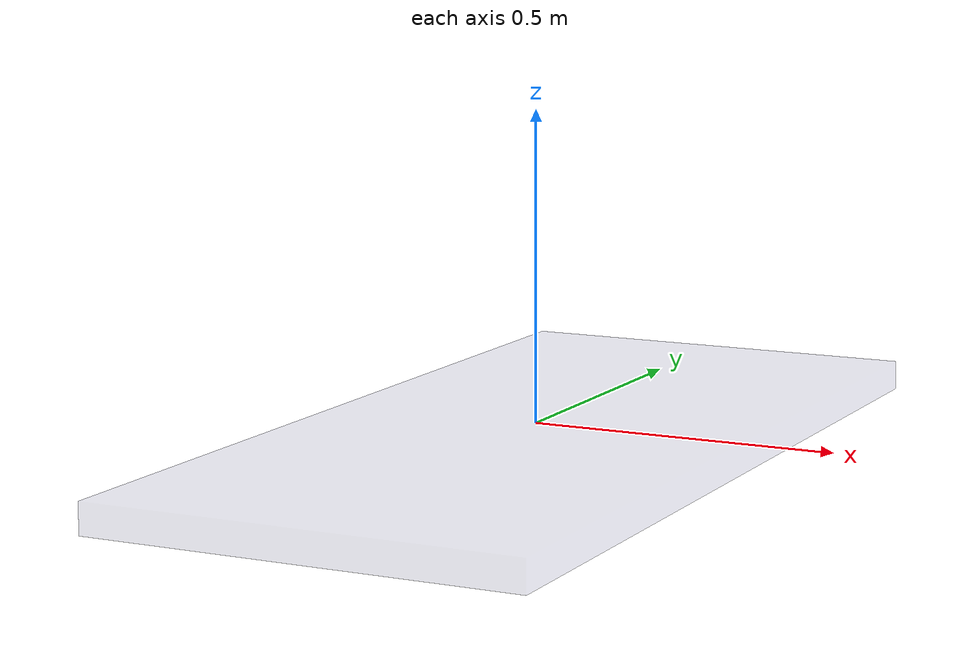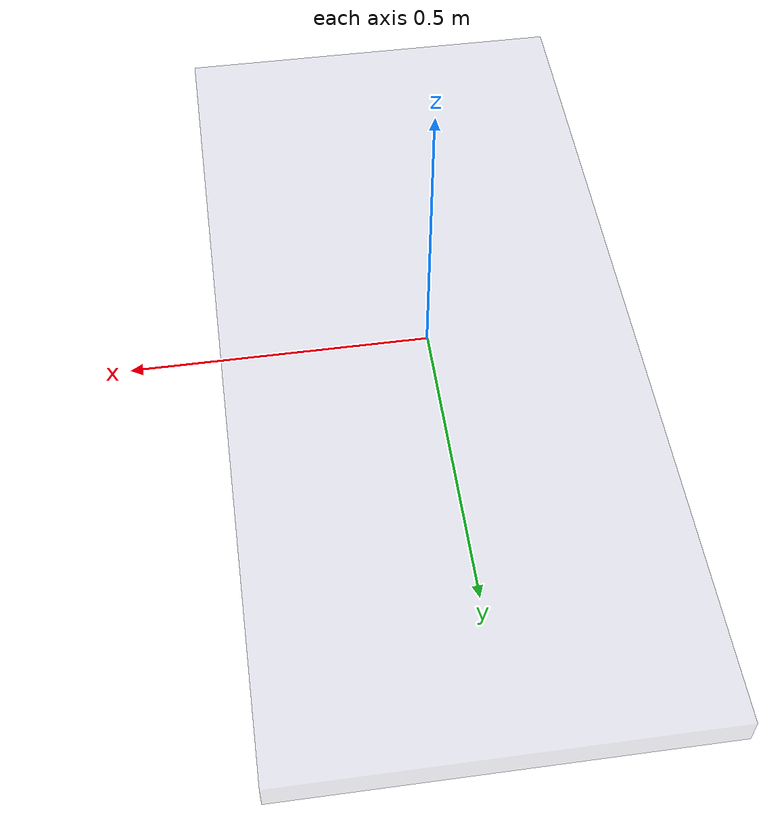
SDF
<?xml version="1.0"?>
<sdf version="1.11">
  <model name="environment">

    <model name="table">
      <!--
      We use a 2x2x0.05 m rectangular block to represent
      a rigid table surface.
      -->
      <link name="table">
        <pose>0 0 0 0 0 0</pose>
        <inertial>
          <pose>0 0 0 0 0 0</pose>
          <mass>1</mass>
        </inertial>
        <visual name="visual">
          <pose>0 0 -0.025 0 0 0</pose>
          <geometry>
            <box>
              <size>0.7 1.5 0.05</size>
            </box>
          </geometry>
          <material>
            <diffuse>0.5 0.5 0.7 0.2</diffuse>
          </material>
        </visual>
        <collision name="collision">
          <pose>0 0 -0.025 0 0 0</pose>
          <geometry>
            <box>
              <size>0.7 1.5 0.05</size>
            </box>
          </geometry>
          <drake:proximity_properties>
            <drake:rigid_hydroelastic/>
            <drake:mu_dynamic>1</drake:mu_dynamic>
            <drake:mu_static>1</drake:mu_static>
            <drake:hunt_crossley_dissipation>3.0</drake:hunt_crossley_dissipation>
            <drake:relaxation_time>0.1</drake:relaxation_time>
          </drake:proximity_properties>
        </collision>
      </link>
    </model>

  </model>
</sdf>
